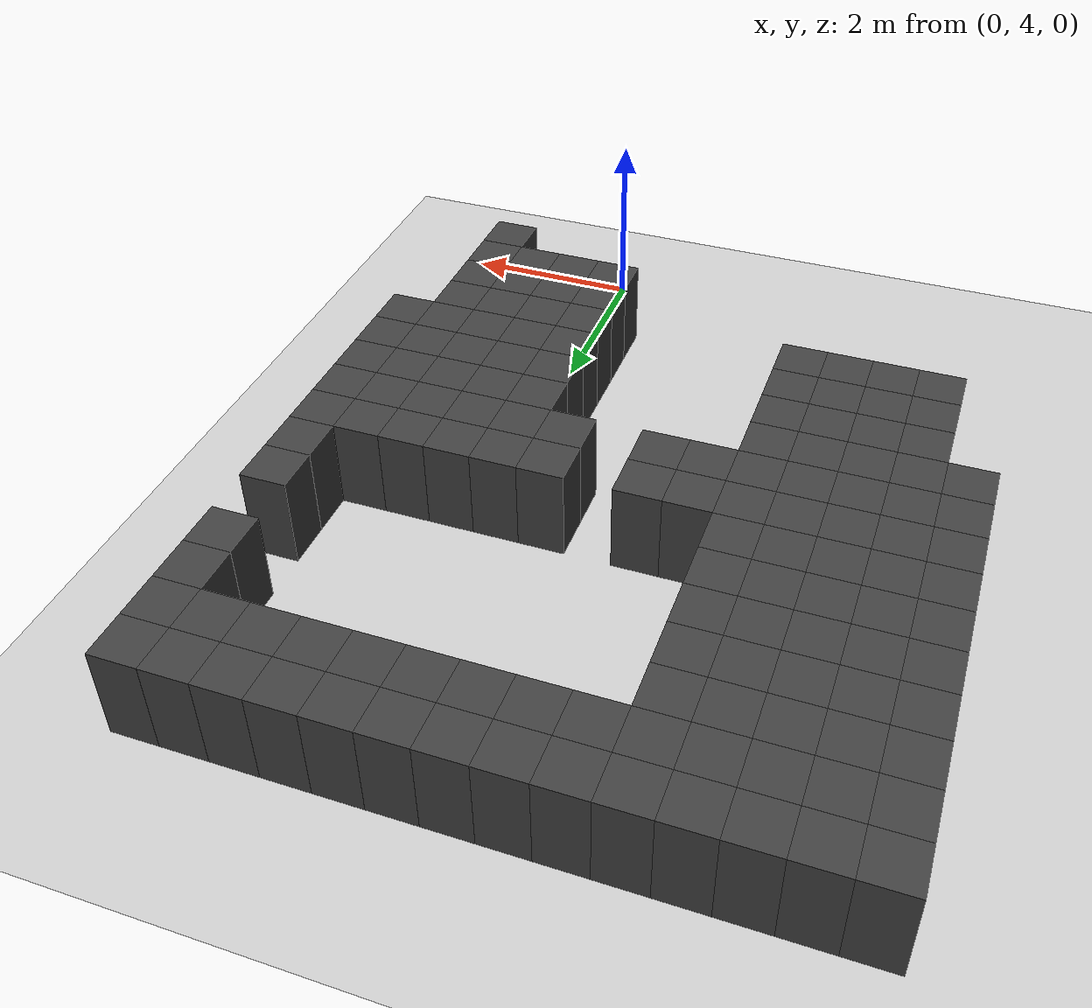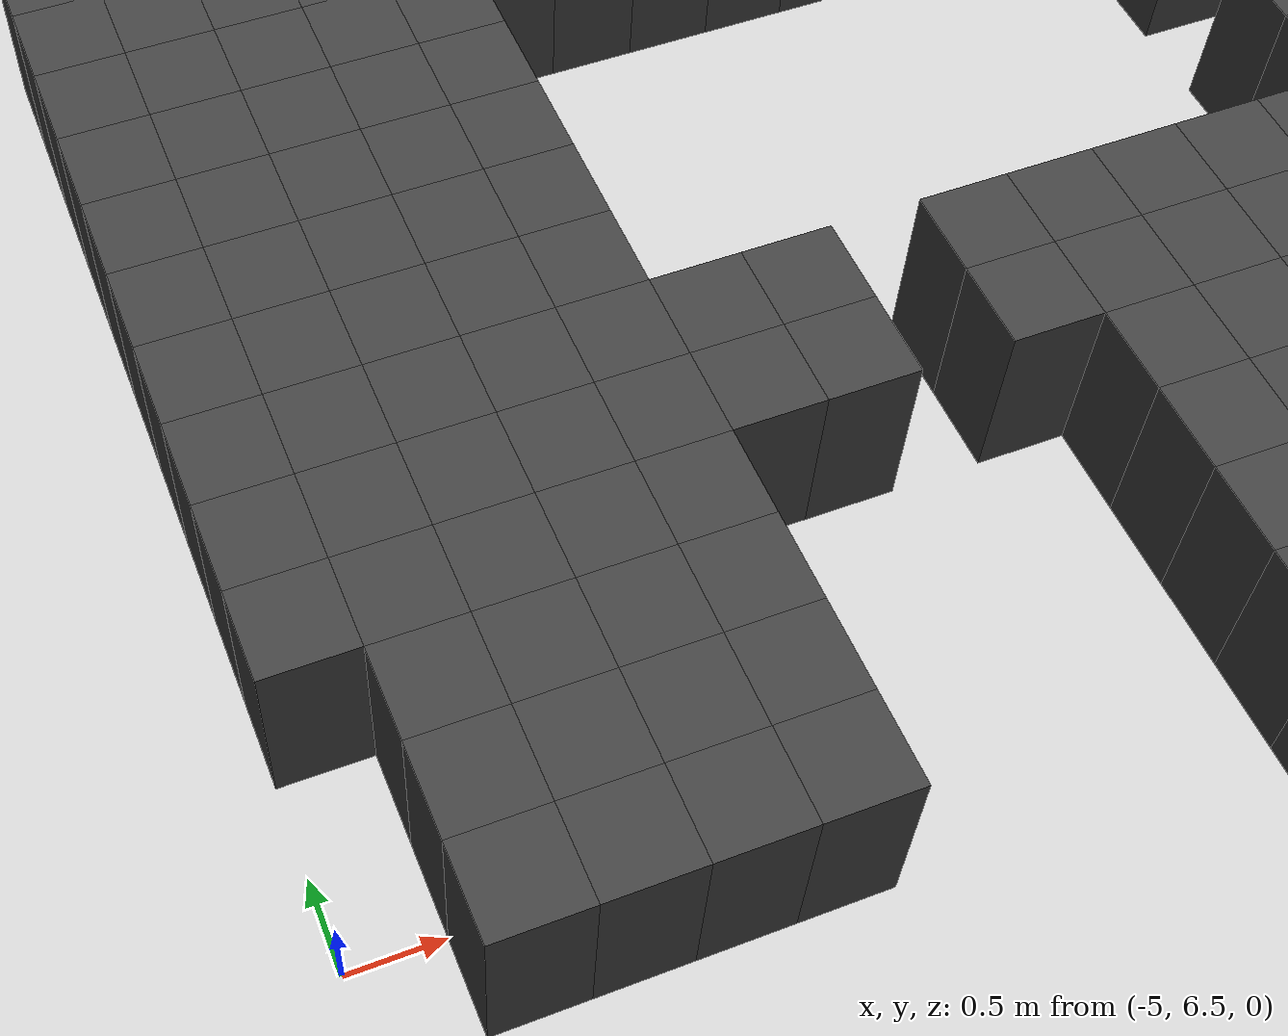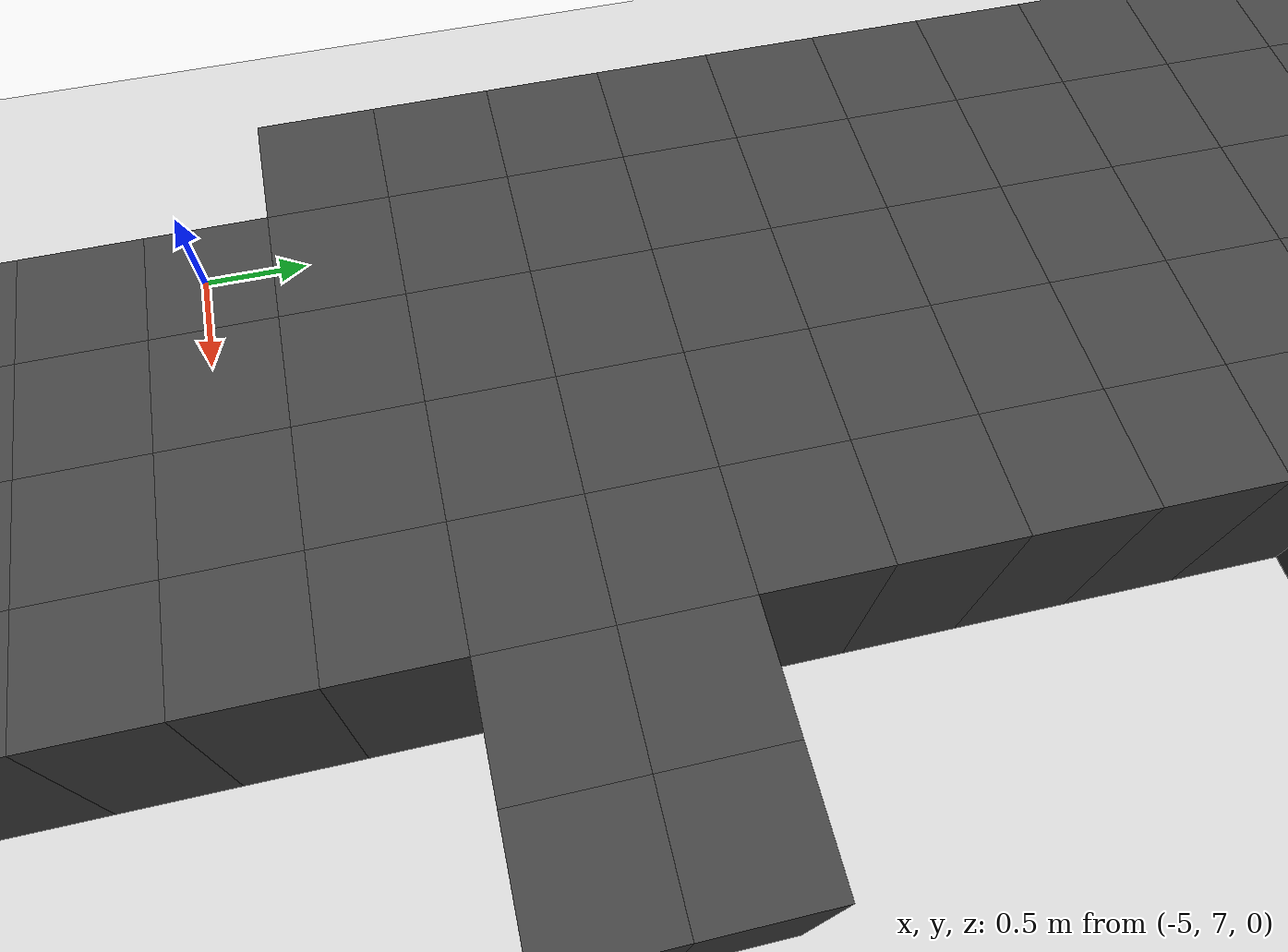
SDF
<sdf version="1.7">
 <world name="map_14494">
  <model name="ground_plane">
   <static>true</static>
   <link name="link">
    <collision name="collision">
     <geometry><plane><normal>0 0 1</normal><size>200 200</size></plane></geometry>
    </collision>
    <visual name="visual">
     <geometry><plane><normal>0 0 1</normal><size>200 200</size></plane></geometry>
     <material><ambient>0.8 0.8 0.8 1</ambient><diffuse>0.8 0.8 0.8 1</diffuse></material>
    </visual>
   </link>
  </model>
  <model name="maze_environment">
   <static>true</static>
   <link name="wall_15">
    <pose>-4.750 12.250 0.500 0 0 0</pose>
    <collision name="col"><geometry><box><size>0.5 0.5 1.0</size></box></geometry></collision>
    <visual name="vis">
     <geometry><box><size>0.5 0.5 1.0</size></box></geometry>
     <material><ambient>0.15 0.15 0.15 1</ambient><diffuse>0.25 0.25 0.25 1</diffuse></material>
    </visual>
   </link>
   <link name="wall_16">
    <pose>-4.250 12.250 0.500 0 0 0</pose>
    <collision name="col"><geometry><box><size>0.5 0.5 1.0</size></box></geometry></collision>
    <visual name="vis">
     <geometry><box><size>0.5 0.5 1.0</size></box></geometry>
     <material><ambient>0.15 0.15 0.15 1</ambient><diffuse>0.25 0.25 0.25 1</diffuse></material>
    </visual>
   </link>
   <link name="wall_17">
    <pose>-3.750 12.250 0.500 0 0 0</pose>
    <collision name="col"><geometry><box><size>0.5 0.5 1.0</size></box></geometry></collision>
    <visual name="vis">
     <geometry><box><size>0.5 0.5 1.0</size></box></geometry>
     <material><ambient>0.15 0.15 0.15 1</ambient><diffuse>0.25 0.25 0.25 1</diffuse></material>
    </visual>
   </link>
   <link name="wall_18">
    <pose>-3.250 12.250 0.500 0 0 0</pose>
    <collision name="col"><geometry><box><size>0.5 0.5 1.0</size></box></geometry></collision>
    <visual name="vis">
     <geometry><box><size>0.5 0.5 1.0</size></box></geometry>
     <material><ambient>0.15 0.15 0.15 1</ambient><diffuse>0.25 0.25 0.25 1</diffuse></material>
    </visual>
   </link>
   <link name="wall_19">
    <pose>-2.750 12.250 0.500 0 0 0</pose>
    <collision name="col"><geometry><box><size>0.5 0.5 1.0</size></box></geometry></collision>
    <visual name="vis">
     <geometry><box><size>0.5 0.5 1.0</size></box></geometry>
     <material><ambient>0.15 0.15 0.15 1</ambient><diffuse>0.25 0.25 0.25 1</diffuse></material>
    </visual>
   </link>
   <link name="wall_20">
    <pose>-2.250 12.250 0.500 0 0 0</pose>
    <collision name="col"><geometry><box><size>0.5 0.5 1.0</size></box></geometry></collision>
    <visual name="vis">
     <geometry><box><size>0.5 0.5 1.0</size></box></geometry>
     <material><ambient>0.15 0.15 0.15 1</ambient><diffuse>0.25 0.25 0.25 1</diffuse></material>
    </visual>
   </link>
   <link name="wall_21">
    <pose>-1.750 12.250 0.500 0 0 0</pose>
    <collision name="col"><geometry><box><size>0.5 0.5 1.0</size></box></geometry></collision>
    <visual name="vis">
     <geometry><box><size>0.5 0.5 1.0</size></box></geometry>
     <material><ambient>0.15 0.15 0.15 1</ambient><diffuse>0.25 0.25 0.25 1</diffuse></material>
    </visual>
   </link>
   <link name="wall_22">
    <pose>-1.250 12.250 0.500 0 0 0</pose>
    <collision name="col"><geometry><box><size>0.5 0.5 1.0</size></box></geometry></collision>
    <visual name="vis">
     <geometry><box><size>0.5 0.5 1.0</size></box></geometry>
     <material><ambient>0.15 0.15 0.15 1</ambient><diffuse>0.25 0.25 0.25 1</diffuse></material>
    </visual>
   </link>
   <link name="wall_23">
    <pose>-0.750 12.250 0.500 0 0 0</pose>
    <collision name="col"><geometry><box><size>0.5 0.5 1.0</size></box></geometry></collision>
    <visual name="vis">
     <geometry><box><size>0.5 0.5 1.0</size></box></geometry>
     <material><ambient>0.15 0.15 0.15 1</ambient><diffuse>0.25 0.25 0.25 1</diffuse></material>
    </visual>
   </link>
   <link name="wall_24">
    <pose>-0.250 12.250 0.500 0 0 0</pose>
    <collision name="col"><geometry><box><size>0.5 0.5 1.0</size></box></geometry></collision>
    <visual name="vis">
     <geometry><box><size>0.5 0.5 1.0</size></box></geometry>
     <material><ambient>0.15 0.15 0.15 1</ambient><diffuse>0.25 0.25 0.25 1</diffuse></material>
    </visual>
   </link>
   <link name="wall_25">
    <pose>0.250 12.250 0.500 0 0 0</pose>
    <collision name="col"><geometry><box><size>0.5 0.5 1.0</size></box></geometry></collision>
    <visual name="vis">
     <geometry><box><size>0.5 0.5 1.0</size></box></geometry>
     <material><ambient>0.15 0.15 0.15 1</ambient><diffuse>0.25 0.25 0.25 1</diffuse></material>
    </visual>
   </link>
   <link name="wall_26">
    <pose>0.750 12.250 0.500 0 0 0</pose>
    <collision name="col"><geometry><box><size>0.5 0.5 1.0</size></box></geometry></collision>
    <visual name="vis">
     <geometry><box><size>0.5 0.5 1.0</size></box></geometry>
     <material><ambient>0.15 0.15 0.15 1</ambient><diffuse>0.25 0.25 0.25 1</diffuse></material>
    </visual>
   </link>
   <link name="wall_27">
    <pose>1.250 12.250 0.500 0 0 0</pose>
    <collision name="col"><geometry><box><size>0.5 0.5 1.0</size></box></geometry></collision>
    <visual name="vis">
     <geometry><box><size>0.5 0.5 1.0</size></box></geometry>
     <material><ambient>0.15 0.15 0.15 1</ambient><diffuse>0.25 0.25 0.25 1</diffuse></material>
    </visual>
   </link>
   <link name="wall_28">
    <pose>1.750 12.250 0.500 0 0 0</pose>
    <collision name="col"><geometry><box><size>0.5 0.5 1.0</size></box></geometry></collision>
    <visual name="vis">
     <geometry><box><size>0.5 0.5 1.0</size></box></geometry>
     <material><ambient>0.15 0.15 0.15 1</ambient><diffuse>0.25 0.25 0.25 1</diffuse></material>
    </visual>
   </link>
   <link name="wall_62">
    <pose>-4.750 11.750 0.500 0 0 0</pose>
    <collision name="col"><geometry><box><size>0.5 0.5 1.0</size></box></geometry></collision>
    <visual name="vis">
     <geometry><box><size>0.5 0.5 1.0</size></box></geometry>
     <material><ambient>0.15 0.15 0.15 1</ambient><diffuse>0.25 0.25 0.25 1</diffuse></material>
    </visual>
   </link>
   <link name="wall_63">
    <pose>-4.250 11.750 0.500 0 0 0</pose>
    <collision name="col"><geometry><box><size>0.5 0.5 1.0</size></box></geometry></collision>
    <visual name="vis">
     <geometry><box><size>0.5 0.5 1.0</size></box></geometry>
     <material><ambient>0.15 0.15 0.15 1</ambient><diffuse>0.25 0.25 0.25 1</diffuse></material>
    </visual>
   </link>
   <link name="wall_64">
    <pose>-3.750 11.750 0.500 0 0 0</pose>
    <collision name="col"><geometry><box><size>0.5 0.5 1.0</size></box></geometry></collision>
    <visual name="vis">
     <geometry><box><size>0.5 0.5 1.0</size></box></geometry>
     <material><ambient>0.15 0.15 0.15 1</ambient><diffuse>0.25 0.25 0.25 1</diffuse></material>
    </visual>
   </link>
   <link name="wall_65">
    <pose>-3.250 11.750 0.500 0 0 0</pose>
    <collision name="col"><geometry><box><size>0.5 0.5 1.0</size></box></geometry></collision>
    <visual name="vis">
     <geometry><box><size>0.5 0.5 1.0</size></box></geometry>
     <material><ambient>0.15 0.15 0.15 1</ambient><diffuse>0.25 0.25 0.25 1</diffuse></material>
    </visual>
   </link>
   <link name="wall_66">
    <pose>-2.750 11.750 0.500 0 0 0</pose>
    <collision name="col"><geometry><box><size>0.5 0.5 1.0</size></box></geometry></collision>
    <visual name="vis">
     <geometry><box><size>0.5 0.5 1.0</size></box></geometry>
     <material><ambient>0.15 0.15 0.15 1</ambient><diffuse>0.25 0.25 0.25 1</diffuse></material>
    </visual>
   </link>
   <link name="wall_67">
    <pose>-2.250 11.750 0.500 0 0 0</pose>
    <collision name="col"><geometry><box><size>0.5 0.5 1.0</size></box></geometry></collision>
    <visual name="vis">
     <geometry><box><size>0.5 0.5 1.0</size></box></geometry>
     <material><ambient>0.15 0.15 0.15 1</ambient><diffuse>0.25 0.25 0.25 1</diffuse></material>
    </visual>
   </link>
   <link name="wall_68">
    <pose>-1.750 11.750 0.500 0 0 0</pose>
    <collision name="col"><geometry><box><size>0.5 0.5 1.0</size></box></geometry></collision>
    <visual name="vis">
     <geometry><box><size>0.5 0.5 1.0</size></box></geometry>
     <material><ambient>0.15 0.15 0.15 1</ambient><diffuse>0.25 0.25 0.25 1</diffuse></material>
    </visual>
   </link>
   <link name="wall_69">
    <pose>-1.250 11.750 0.500 0 0 0</pose>
    <collision name="col"><geometry><box><size>0.5 0.5 1.0</size></box></geometry></collision>
    <visual name="vis">
     <geometry><box><size>0.5 0.5 1.0</size></box></geometry>
     <material><ambient>0.15 0.15 0.15 1</ambient><diffuse>0.25 0.25 0.25 1</diffuse></material>
    </visual>
   </link>
   <link name="wall_70">
    <pose>-0.750 11.750 0.500 0 0 0</pose>
    <collision name="col"><geometry><box><size>0.5 0.5 1.0</size></box></geometry></collision>
    <visual name="vis">
     <geometry><box><size>0.5 0.5 1.0</size></box></geometry>
     <material><ambient>0.15 0.15 0.15 1</ambient><diffuse>0.25 0.25 0.25 1</diffuse></material>
    </visual>
   </link>
   <link name="wall_71">
    <pose>-0.250 11.750 0.500 0 0 0</pose>
    <collision name="col"><geometry><box><size>0.5 0.5 1.0</size></box></geometry></collision>
    <visual name="vis">
     <geometry><box><size>0.5 0.5 1.0</size></box></geometry>
     <material><ambient>0.15 0.15 0.15 1</ambient><diffuse>0.25 0.25 0.25 1</diffuse></material>
    </visual>
   </link>
   <link name="wall_72">
    <pose>0.250 11.750 0.500 0 0 0</pose>
    <collision name="col"><geometry><box><size>0.5 0.5 1.0</size></box></geometry></collision>
    <visual name="vis">
     <geometry><box><size>0.5 0.5 1.0</size></box></geometry>
     <material><ambient>0.15 0.15 0.15 1</ambient><diffuse>0.25 0.25 0.25 1</diffuse></material>
    </visual>
   </link>
   <link name="wall_73">
    <pose>0.750 11.750 0.500 0 0 0</pose>
    <collision name="col"><geometry><box><size>0.5 0.5 1.0</size></box></geometry></collision>
    <visual name="vis">
     <geometry><box><size>0.5 0.5 1.0</size></box></geometry>
     <material><ambient>0.15 0.15 0.15 1</ambient><diffuse>0.25 0.25 0.25 1</diffuse></material>
    </visual>
   </link>
   <link name="wall_74">
    <pose>1.250 11.750 0.500 0 0 0</pose>
    <collision name="col"><geometry><box><size>0.5 0.5 1.0</size></box></geometry></collision>
    <visual name="vis">
     <geometry><box><size>0.5 0.5 1.0</size></box></geometry>
     <material><ambient>0.15 0.15 0.15 1</ambient><diffuse>0.25 0.25 0.25 1</diffuse></material>
    </visual>
   </link>
   <link name="wall_75">
    <pose>1.750 11.750 0.500 0 0 0</pose>
    <collision name="col"><geometry><box><size>0.5 0.5 1.0</size></box></geometry></collision>
    <visual name="vis">
     <geometry><box><size>0.5 0.5 1.0</size></box></geometry>
     <material><ambient>0.15 0.15 0.15 1</ambient><diffuse>0.25 0.25 0.25 1</diffuse></material>
    </visual>
   </link>
   <link name="wall_109">
    <pose>-4.750 11.250 0.500 0 0 0</pose>
    <collision name="col"><geometry><box><size>0.5 0.5 1.0</size></box></geometry></collision>
    <visual name="vis">
     <geometry><box><size>0.5 0.5 1.0</size></box></geometry>
     <material><ambient>0.15 0.15 0.15 1</ambient><diffuse>0.25 0.25 0.25 1</diffuse></material>
    </visual>
   </link>
   <link name="wall_110">
    <pose>-4.250 11.250 0.500 0 0 0</pose>
    <collision name="col"><geometry><box><size>0.5 0.5 1.0</size></box></geometry></collision>
    <visual name="vis">
     <geometry><box><size>0.5 0.5 1.0</size></box></geometry>
     <material><ambient>0.15 0.15 0.15 1</ambient><diffuse>0.25 0.25 0.25 1</diffuse></material>
    </visual>
   </link>
   <link name="wall_111">
    <pose>-3.750 11.250 0.500 0 0 0</pose>
    <collision name="col"><geometry><box><size>0.5 0.5 1.0</size></box></geometry></collision>
    <visual name="vis">
     <geometry><box><size>0.5 0.5 1.0</size></box></geometry>
     <material><ambient>0.15 0.15 0.15 1</ambient><diffuse>0.25 0.25 0.25 1</diffuse></material>
    </visual>
   </link>
   <link name="wall_112">
    <pose>-3.250 11.250 0.500 0 0 0</pose>
    <collision name="col"><geometry><box><size>0.5 0.5 1.0</size></box></geometry></collision>
    <visual name="vis">
     <geometry><box><size>0.5 0.5 1.0</size></box></geometry>
     <material><ambient>0.15 0.15 0.15 1</ambient><diffuse>0.25 0.25 0.25 1</diffuse></material>
    </visual>
   </link>
   <link name="wall_113">
    <pose>-2.750 11.250 0.500 0 0 0</pose>
    <collision name="col"><geometry><box><size>0.5 0.5 1.0</size></box></geometry></collision>
    <visual name="vis">
     <geometry><box><size>0.5 0.5 1.0</size></box></geometry>
     <material><ambient>0.15 0.15 0.15 1</ambient><diffuse>0.25 0.25 0.25 1</diffuse></material>
    </visual>
   </link>
   <link name="wall_114">
    <pose>1.750 11.250 0.500 0 0 0</pose>
    <collision name="col"><geometry><box><size>0.5 0.5 1.0</size></box></geometry></collision>
    <visual name="vis">
     <geometry><box><size>0.5 0.5 1.0</size></box></geometry>
     <material><ambient>0.15 0.15 0.15 1</ambient><diffuse>0.25 0.25 0.25 1</diffuse></material>
    </visual>
   </link>
   <link name="wall_137">
    <pose>-4.750 10.750 0.500 0 0 0</pose>
    <collision name="col"><geometry><box><size>0.5 0.5 1.0</size></box></geometry></collision>
    <visual name="vis">
     <geometry><box><size>0.5 0.5 1.0</size></box></geometry>
     <material><ambient>0.15 0.15 0.15 1</ambient><diffuse>0.25 0.25 0.25 1</diffuse></material>
    </visual>
   </link>
   <link name="wall_138">
    <pose>-4.250 10.750 0.500 0 0 0</pose>
    <collision name="col"><geometry><box><size>0.5 0.5 1.0</size></box></geometry></collision>
    <visual name="vis">
     <geometry><box><size>0.5 0.5 1.0</size></box></geometry>
     <material><ambient>0.15 0.15 0.15 1</ambient><diffuse>0.25 0.25 0.25 1</diffuse></material>
    </visual>
   </link>
   <link name="wall_139">
    <pose>-3.750 10.750 0.500 0 0 0</pose>
    <collision name="col"><geometry><box><size>0.5 0.5 1.0</size></box></geometry></collision>
    <visual name="vis">
     <geometry><box><size>0.5 0.5 1.0</size></box></geometry>
     <material><ambient>0.15 0.15 0.15 1</ambient><diffuse>0.25 0.25 0.25 1</diffuse></material>
    </visual>
   </link>
   <link name="wall_140">
    <pose>-3.250 10.750 0.500 0 0 0</pose>
    <collision name="col"><geometry><box><size>0.5 0.5 1.0</size></box></geometry></collision>
    <visual name="vis">
     <geometry><box><size>0.5 0.5 1.0</size></box></geometry>
     <material><ambient>0.15 0.15 0.15 1</ambient><diffuse>0.25 0.25 0.25 1</diffuse></material>
    </visual>
   </link>
   <link name="wall_141">
    <pose>-2.750 10.750 0.500 0 0 0</pose>
    <collision name="col"><geometry><box><size>0.5 0.5 1.0</size></box></geometry></collision>
    <visual name="vis">
     <geometry><box><size>0.5 0.5 1.0</size></box></geometry>
     <material><ambient>0.15 0.15 0.15 1</ambient><diffuse>0.25 0.25 0.25 1</diffuse></material>
    </visual>
   </link>
   <link name="wall_142">
    <pose>1.750 10.750 0.500 0 0 0</pose>
    <collision name="col"><geometry><box><size>0.5 0.5 1.0</size></box></geometry></collision>
    <visual name="vis">
     <geometry><box><size>0.5 0.5 1.0</size></box></geometry>
     <material><ambient>0.15 0.15 0.15 1</ambient><diffuse>0.25 0.25 0.25 1</diffuse></material>
    </visual>
   </link>
   <link name="wall_167">
    <pose>-4.750 10.250 0.500 0 0 0</pose>
    <collision name="col"><geometry><box><size>0.5 0.5 1.0</size></box></geometry></collision>
    <visual name="vis">
     <geometry><box><size>0.5 0.5 1.0</size></box></geometry>
     <material><ambient>0.15 0.15 0.15 1</ambient><diffuse>0.25 0.25 0.25 1</diffuse></material>
    </visual>
   </link>
   <link name="wall_168">
    <pose>-4.250 10.250 0.500 0 0 0</pose>
    <collision name="col"><geometry><box><size>0.5 0.5 1.0</size></box></geometry></collision>
    <visual name="vis">
     <geometry><box><size>0.5 0.5 1.0</size></box></geometry>
     <material><ambient>0.15 0.15 0.15 1</ambient><diffuse>0.25 0.25 0.25 1</diffuse></material>
    </visual>
   </link>
   <link name="wall_169">
    <pose>-3.750 10.250 0.500 0 0 0</pose>
    <collision name="col"><geometry><box><size>0.5 0.5 1.0</size></box></geometry></collision>
    <visual name="vis">
     <geometry><box><size>0.5 0.5 1.0</size></box></geometry>
     <material><ambient>0.15 0.15 0.15 1</ambient><diffuse>0.25 0.25 0.25 1</diffuse></material>
    </visual>
   </link>
   <link name="wall_170">
    <pose>-3.250 10.250 0.500 0 0 0</pose>
    <collision name="col"><geometry><box><size>0.5 0.5 1.0</size></box></geometry></collision>
    <visual name="vis">
     <geometry><box><size>0.5 0.5 1.0</size></box></geometry>
     <material><ambient>0.15 0.15 0.15 1</ambient><diffuse>0.25 0.25 0.25 1</diffuse></material>
    </visual>
   </link>
   <link name="wall_171">
    <pose>-2.750 10.250 0.500 0 0 0</pose>
    <collision name="col"><geometry><box><size>0.5 0.5 1.0</size></box></geometry></collision>
    <visual name="vis">
     <geometry><box><size>0.5 0.5 1.0</size></box></geometry>
     <material><ambient>0.15 0.15 0.15 1</ambient><diffuse>0.25 0.25 0.25 1</diffuse></material>
    </visual>
   </link>
   <link name="wall_185">
    <pose>-4.750 9.750 0.500 0 0 0</pose>
    <collision name="col"><geometry><box><size>0.5 0.5 1.0</size></box></geometry></collision>
    <visual name="vis">
     <geometry><box><size>0.5 0.5 1.0</size></box></geometry>
     <material><ambient>0.15 0.15 0.15 1</ambient><diffuse>0.25 0.25 0.25 1</diffuse></material>
    </visual>
   </link>
   <link name="wall_186">
    <pose>-4.250 9.750 0.500 0 0 0</pose>
    <collision name="col"><geometry><box><size>0.5 0.5 1.0</size></box></geometry></collision>
    <visual name="vis">
     <geometry><box><size>0.5 0.5 1.0</size></box></geometry>
     <material><ambient>0.15 0.15 0.15 1</ambient><diffuse>0.25 0.25 0.25 1</diffuse></material>
    </visual>
   </link>
   <link name="wall_187">
    <pose>-3.750 9.750 0.500 0 0 0</pose>
    <collision name="col"><geometry><box><size>0.5 0.5 1.0</size></box></geometry></collision>
    <visual name="vis">
     <geometry><box><size>0.5 0.5 1.0</size></box></geometry>
     <material><ambient>0.15 0.15 0.15 1</ambient><diffuse>0.25 0.25 0.25 1</diffuse></material>
    </visual>
   </link>
   <link name="wall_188">
    <pose>-3.250 9.750 0.500 0 0 0</pose>
    <collision name="col"><geometry><box><size>0.5 0.5 1.0</size></box></geometry></collision>
    <visual name="vis">
     <geometry><box><size>0.5 0.5 1.0</size></box></geometry>
     <material><ambient>0.15 0.15 0.15 1</ambient><diffuse>0.25 0.25 0.25 1</diffuse></material>
    </visual>
   </link>
   <link name="wall_189">
    <pose>-2.750 9.750 0.500 0 0 0</pose>
    <collision name="col"><geometry><box><size>0.5 0.5 1.0</size></box></geometry></collision>
    <visual name="vis">
     <geometry><box><size>0.5 0.5 1.0</size></box></geometry>
     <material><ambient>0.15 0.15 0.15 1</ambient><diffuse>0.25 0.25 0.25 1</diffuse></material>
    </visual>
   </link>
   <link name="wall_190">
    <pose>1.750 9.750 0.500 0 0 0</pose>
    <collision name="col"><geometry><box><size>0.5 0.5 1.0</size></box></geometry></collision>
    <visual name="vis">
     <geometry><box><size>0.5 0.5 1.0</size></box></geometry>
     <material><ambient>0.15 0.15 0.15 1</ambient><diffuse>0.25 0.25 0.25 1</diffuse></material>
    </visual>
   </link>
   <link name="wall_210">
    <pose>-4.750 9.250 0.500 0 0 0</pose>
    <collision name="col"><geometry><box><size>0.5 0.5 1.0</size></box></geometry></collision>
    <visual name="vis">
     <geometry><box><size>0.5 0.5 1.0</size></box></geometry>
     <material><ambient>0.15 0.15 0.15 1</ambient><diffuse>0.25 0.25 0.25 1</diffuse></material>
    </visual>
   </link>
   <link name="wall_211">
    <pose>-4.250 9.250 0.500 0 0 0</pose>
    <collision name="col"><geometry><box><size>0.5 0.5 1.0</size></box></geometry></collision>
    <visual name="vis">
     <geometry><box><size>0.5 0.5 1.0</size></box></geometry>
     <material><ambient>0.15 0.15 0.15 1</ambient><diffuse>0.25 0.25 0.25 1</diffuse></material>
    </visual>
   </link>
   <link name="wall_212">
    <pose>-3.750 9.250 0.500 0 0 0</pose>
    <collision name="col"><geometry><box><size>0.5 0.5 1.0</size></box></geometry></collision>
    <visual name="vis">
     <geometry><box><size>0.5 0.5 1.0</size></box></geometry>
     <material><ambient>0.15 0.15 0.15 1</ambient><diffuse>0.25 0.25 0.25 1</diffuse></material>
    </visual>
   </link>
   <link name="wall_213">
    <pose>-3.250 9.250 0.500 0 0 0</pose>
    <collision name="col"><geometry><box><size>0.5 0.5 1.0</size></box></geometry></collision>
    <visual name="vis">
     <geometry><box><size>0.5 0.5 1.0</size></box></geometry>
     <material><ambient>0.15 0.15 0.15 1</ambient><diffuse>0.25 0.25 0.25 1</diffuse></material>
    </visual>
   </link>
   <link name="wall_214">
    <pose>-2.750 9.250 0.500 0 0 0</pose>
    <collision name="col"><geometry><box><size>0.5 0.5 1.0</size></box></geometry></collision>
    <visual name="vis">
     <geometry><box><size>0.5 0.5 1.0</size></box></geometry>
     <material><ambient>0.15 0.15 0.15 1</ambient><diffuse>0.25 0.25 0.25 1</diffuse></material>
    </visual>
   </link>
   <link name="wall_215">
    <pose>1.750 9.250 0.500 0 0 0</pose>
    <collision name="col"><geometry><box><size>0.5 0.5 1.0</size></box></geometry></collision>
    <visual name="vis">
     <geometry><box><size>0.5 0.5 1.0</size></box></geometry>
     <material><ambient>0.15 0.15 0.15 1</ambient><diffuse>0.25 0.25 0.25 1</diffuse></material>
    </visual>
   </link>
   <link name="wall_241">
    <pose>-4.750 8.750 0.500 0 0 0</pose>
    <collision name="col"><geometry><box><size>0.5 0.5 1.0</size></box></geometry></collision>
    <visual name="vis">
     <geometry><box><size>0.5 0.5 1.0</size></box></geometry>
     <material><ambient>0.15 0.15 0.15 1</ambient><diffuse>0.25 0.25 0.25 1</diffuse></material>
    </visual>
   </link>
   <link name="wall_242">
    <pose>-4.250 8.750 0.500 0 0 0</pose>
    <collision name="col"><geometry><box><size>0.5 0.5 1.0</size></box></geometry></collision>
    <visual name="vis">
     <geometry><box><size>0.5 0.5 1.0</size></box></geometry>
     <material><ambient>0.15 0.15 0.15 1</ambient><diffuse>0.25 0.25 0.25 1</diffuse></material>
    </visual>
   </link>
   <link name="wall_243">
    <pose>-3.750 8.750 0.500 0 0 0</pose>
    <collision name="col"><geometry><box><size>0.5 0.5 1.0</size></box></geometry></collision>
    <visual name="vis">
     <geometry><box><size>0.5 0.5 1.0</size></box></geometry>
     <material><ambient>0.15 0.15 0.15 1</ambient><diffuse>0.25 0.25 0.25 1</diffuse></material>
    </visual>
   </link>
   <link name="wall_244">
    <pose>-3.250 8.750 0.500 0 0 0</pose>
    <collision name="col"><geometry><box><size>0.5 0.5 1.0</size></box></geometry></collision>
    <visual name="vis">
     <geometry><box><size>0.5 0.5 1.0</size></box></geometry>
     <material><ambient>0.15 0.15 0.15 1</ambient><diffuse>0.25 0.25 0.25 1</diffuse></material>
    </visual>
   </link>
   <link name="wall_245">
    <pose>-2.750 8.750 0.500 0 0 0</pose>
    <collision name="col"><geometry><box><size>0.5 0.5 1.0</size></box></geometry></collision>
    <visual name="vis">
     <geometry><box><size>0.5 0.5 1.0</size></box></geometry>
     <material><ambient>0.15 0.15 0.15 1</ambient><diffuse>0.25 0.25 0.25 1</diffuse></material>
    </visual>
   </link>
   <link name="wall_246">
    <pose>-2.250 8.750 0.500 0 0 0</pose>
    <collision name="col"><geometry><box><size>0.5 0.5 1.0</size></box></geometry></collision>
    <visual name="vis">
     <geometry><box><size>0.5 0.5 1.0</size></box></geometry>
     <material><ambient>0.15 0.15 0.15 1</ambient><diffuse>0.25 0.25 0.25 1</diffuse></material>
    </visual>
   </link>
   <link name="wall_247">
    <pose>-1.750 8.750 0.500 0 0 0</pose>
    <collision name="col"><geometry><box><size>0.5 0.5 1.0</size></box></geometry></collision>
    <visual name="vis">
     <geometry><box><size>0.5 0.5 1.0</size></box></geometry>
     <material><ambient>0.15 0.15 0.15 1</ambient><diffuse>0.25 0.25 0.25 1</diffuse></material>
    </visual>
   </link>
   <link name="wall_248">
    <pose>-0.750 8.750 0.500 0 0 0</pose>
    <collision name="col"><geometry><box><size>0.5 0.5 1.0</size></box></geometry></collision>
    <visual name="vis">
     <geometry><box><size>0.5 0.5 1.0</size></box></geometry>
     <material><ambient>0.15 0.15 0.15 1</ambient><diffuse>0.25 0.25 0.25 1</diffuse></material>
    </visual>
   </link>
   <link name="wall_249">
    <pose>-0.250 8.750 0.500 0 0 0</pose>
    <collision name="col"><geometry><box><size>0.5 0.5 1.0</size></box></geometry></collision>
    <visual name="vis">
     <geometry><box><size>0.5 0.5 1.0</size></box></geometry>
     <material><ambient>0.15 0.15 0.15 1</ambient><diffuse>0.25 0.25 0.25 1</diffuse></material>
    </visual>
   </link>
   <link name="wall_250">
    <pose>0.250 8.750 0.500 0 0 0</pose>
    <collision name="col"><geometry><box><size>0.5 0.5 1.0</size></box></geometry></collision>
    <visual name="vis">
     <geometry><box><size>0.5 0.5 1.0</size></box></geometry>
     <material><ambient>0.15 0.15 0.15 1</ambient><diffuse>0.25 0.25 0.25 1</diffuse></material>
    </visual>
   </link>
   <link name="wall_251">
    <pose>0.750 8.750 0.500 0 0 0</pose>
    <collision name="col"><geometry><box><size>0.5 0.5 1.0</size></box></geometry></collision>
    <visual name="vis">
     <geometry><box><size>0.5 0.5 1.0</size></box></geometry>
     <material><ambient>0.15 0.15 0.15 1</ambient><diffuse>0.25 0.25 0.25 1</diffuse></material>
    </visual>
   </link>
   <link name="wall_252">
    <pose>1.250 8.750 0.500 0 0 0</pose>
    <collision name="col"><geometry><box><size>0.5 0.5 1.0</size></box></geometry></collision>
    <visual name="vis">
     <geometry><box><size>0.5 0.5 1.0</size></box></geometry>
     <material><ambient>0.15 0.15 0.15 1</ambient><diffuse>0.25 0.25 0.25 1</diffuse></material>
    </visual>
   </link>
   <link name="wall_253">
    <pose>1.750 8.750 0.500 0 0 0</pose>
    <collision name="col"><geometry><box><size>0.5 0.5 1.0</size></box></geometry></collision>
    <visual name="vis">
     <geometry><box><size>0.5 0.5 1.0</size></box></geometry>
     <material><ambient>0.15 0.15 0.15 1</ambient><diffuse>0.25 0.25 0.25 1</diffuse></material>
    </visual>
   </link>
   <link name="wall_283">
    <pose>-4.750 8.250 0.500 0 0 0</pose>
    <collision name="col"><geometry><box><size>0.5 0.5 1.0</size></box></geometry></collision>
    <visual name="vis">
     <geometry><box><size>0.5 0.5 1.0</size></box></geometry>
     <material><ambient>0.15 0.15 0.15 1</ambient><diffuse>0.25 0.25 0.25 1</diffuse></material>
    </visual>
   </link>
   <link name="wall_284">
    <pose>-4.250 8.250 0.500 0 0 0</pose>
    <collision name="col"><geometry><box><size>0.5 0.5 1.0</size></box></geometry></collision>
    <visual name="vis">
     <geometry><box><size>0.5 0.5 1.0</size></box></geometry>
     <material><ambient>0.15 0.15 0.15 1</ambient><diffuse>0.25 0.25 0.25 1</diffuse></material>
    </visual>
   </link>
   <link name="wall_285">
    <pose>-3.750 8.250 0.500 0 0 0</pose>
    <collision name="col"><geometry><box><size>0.5 0.5 1.0</size></box></geometry></collision>
    <visual name="vis">
     <geometry><box><size>0.5 0.5 1.0</size></box></geometry>
     <material><ambient>0.15 0.15 0.15 1</ambient><diffuse>0.25 0.25 0.25 1</diffuse></material>
    </visual>
   </link>
   <link name="wall_286">
    <pose>-3.250 8.250 0.500 0 0 0</pose>
    <collision name="col"><geometry><box><size>0.5 0.5 1.0</size></box></geometry></collision>
    <visual name="vis">
     <geometry><box><size>0.5 0.5 1.0</size></box></geometry>
     <material><ambient>0.15 0.15 0.15 1</ambient><diffuse>0.25 0.25 0.25 1</diffuse></material>
    </visual>
   </link>
   <link name="wall_287">
    <pose>-2.750 8.250 0.500 0 0 0</pose>
    <collision name="col"><geometry><box><size>0.5 0.5 1.0</size></box></geometry></collision>
    <visual name="vis">
     <geometry><box><size>0.5 0.5 1.0</size></box></geometry>
     <material><ambient>0.15 0.15 0.15 1</ambient><diffuse>0.25 0.25 0.25 1</diffuse></material>
    </visual>
   </link>
   <link name="wall_288">
    <pose>-2.250 8.250 0.500 0 0 0</pose>
    <collision name="col"><geometry><box><size>0.5 0.5 1.0</size></box></geometry></collision>
    <visual name="vis">
     <geometry><box><size>0.5 0.5 1.0</size></box></geometry>
     <material><ambient>0.15 0.15 0.15 1</ambient><diffuse>0.25 0.25 0.25 1</diffuse></material>
    </visual>
   </link>
   <link name="wall_289">
    <pose>-1.750 8.250 0.500 0 0 0</pose>
    <collision name="col"><geometry><box><size>0.5 0.5 1.0</size></box></geometry></collision>
    <visual name="vis">
     <geometry><box><size>0.5 0.5 1.0</size></box></geometry>
     <material><ambient>0.15 0.15 0.15 1</ambient><diffuse>0.25 0.25 0.25 1</diffuse></material>
    </visual>
   </link>
   <link name="wall_290">
    <pose>-0.750 8.250 0.500 0 0 0</pose>
    <collision name="col"><geometry><box><size>0.5 0.5 1.0</size></box></geometry></collision>
    <visual name="vis">
     <geometry><box><size>0.5 0.5 1.0</size></box></geometry>
     <material><ambient>0.15 0.15 0.15 1</ambient><diffuse>0.25 0.25 0.25 1</diffuse></material>
    </visual>
   </link>
   <link name="wall_291">
    <pose>-0.250 8.250 0.500 0 0 0</pose>
    <collision name="col"><geometry><box><size>0.5 0.5 1.0</size></box></geometry></collision>
    <visual name="vis">
     <geometry><box><size>0.5 0.5 1.0</size></box></geometry>
     <material><ambient>0.15 0.15 0.15 1</ambient><diffuse>0.25 0.25 0.25 1</diffuse></material>
    </visual>
   </link>
   <link name="wall_292">
    <pose>0.250 8.250 0.500 0 0 0</pose>
    <collision name="col"><geometry><box><size>0.5 0.5 1.0</size></box></geometry></collision>
    <visual name="vis">
     <geometry><box><size>0.5 0.5 1.0</size></box></geometry>
     <material><ambient>0.15 0.15 0.15 1</ambient><diffuse>0.25 0.25 0.25 1</diffuse></material>
    </visual>
   </link>
   <link name="wall_293">
    <pose>0.750 8.250 0.500 0 0 0</pose>
    <collision name="col"><geometry><box><size>0.5 0.5 1.0</size></box></geometry></collision>
    <visual name="vis">
     <geometry><box><size>0.5 0.5 1.0</size></box></geometry>
     <material><ambient>0.15 0.15 0.15 1</ambient><diffuse>0.25 0.25 0.25 1</diffuse></material>
    </visual>
   </link>
   <link name="wall_294">
    <pose>1.250 8.250 0.500 0 0 0</pose>
    <collision name="col"><geometry><box><size>0.5 0.5 1.0</size></box></geometry></collision>
    <visual name="vis">
     <geometry><box><size>0.5 0.5 1.0</size></box></geometry>
     <material><ambient>0.15 0.15 0.15 1</ambient><diffuse>0.25 0.25 0.25 1</diffuse></material>
    </visual>
   </link>
   <link name="wall_295">
    <pose>1.750 8.250 0.500 0 0 0</pose>
    <collision name="col"><geometry><box><size>0.5 0.5 1.0</size></box></geometry></collision>
    <visual name="vis">
     <geometry><box><size>0.5 0.5 1.0</size></box></geometry>
     <material><ambient>0.15 0.15 0.15 1</ambient><diffuse>0.25 0.25 0.25 1</diffuse></material>
    </visual>
   </link>
   <link name="wall_327">
    <pose>-4.750 7.750 0.500 0 0 0</pose>
    <collision name="col"><geometry><box><size>0.5 0.5 1.0</size></box></geometry></collision>
    <visual name="vis">
     <geometry><box><size>0.5 0.5 1.0</size></box></geometry>
     <material><ambient>0.15 0.15 0.15 1</ambient><diffuse>0.25 0.25 0.25 1</diffuse></material>
    </visual>
   </link>
   <link name="wall_328">
    <pose>-4.250 7.750 0.500 0 0 0</pose>
    <collision name="col"><geometry><box><size>0.5 0.5 1.0</size></box></geometry></collision>
    <visual name="vis">
     <geometry><box><size>0.5 0.5 1.0</size></box></geometry>
     <material><ambient>0.15 0.15 0.15 1</ambient><diffuse>0.25 0.25 0.25 1</diffuse></material>
    </visual>
   </link>
   <link name="wall_329">
    <pose>-3.750 7.750 0.500 0 0 0</pose>
    <collision name="col"><geometry><box><size>0.5 0.5 1.0</size></box></geometry></collision>
    <visual name="vis">
     <geometry><box><size>0.5 0.5 1.0</size></box></geometry>
     <material><ambient>0.15 0.15 0.15 1</ambient><diffuse>0.25 0.25 0.25 1</diffuse></material>
    </visual>
   </link>
   <link name="wall_330">
    <pose>-3.250 7.750 0.500 0 0 0</pose>
    <collision name="col"><geometry><box><size>0.5 0.5 1.0</size></box></geometry></collision>
    <visual name="vis">
     <geometry><box><size>0.5 0.5 1.0</size></box></geometry>
     <material><ambient>0.15 0.15 0.15 1</ambient><diffuse>0.25 0.25 0.25 1</diffuse></material>
    </visual>
   </link>
   <link name="wall_331">
    <pose>-2.750 7.750 0.500 0 0 0</pose>
    <collision name="col"><geometry><box><size>0.5 0.5 1.0</size></box></geometry></collision>
    <visual name="vis">
     <geometry><box><size>0.5 0.5 1.0</size></box></geometry>
     <material><ambient>0.15 0.15 0.15 1</ambient><diffuse>0.25 0.25 0.25 1</diffuse></material>
    </visual>
   </link>
   <link name="wall_332">
    <pose>-0.250 7.750 0.500 0 0 0</pose>
    <collision name="col"><geometry><box><size>0.5 0.5 1.0</size></box></geometry></collision>
    <visual name="vis">
     <geometry><box><size>0.5 0.5 1.0</size></box></geometry>
     <material><ambient>0.15 0.15 0.15 1</ambient><diffuse>0.25 0.25 0.25 1</diffuse></material>
    </visual>
   </link>
   <link name="wall_333">
    <pose>0.250 7.750 0.500 0 0 0</pose>
    <collision name="col"><geometry><box><size>0.5 0.5 1.0</size></box></geometry></collision>
    <visual name="vis">
     <geometry><box><size>0.5 0.5 1.0</size></box></geometry>
     <material><ambient>0.15 0.15 0.15 1</ambient><diffuse>0.25 0.25 0.25 1</diffuse></material>
    </visual>
   </link>
   <link name="wall_334">
    <pose>0.750 7.750 0.500 0 0 0</pose>
    <collision name="col"><geometry><box><size>0.5 0.5 1.0</size></box></geometry></collision>
    <visual name="vis">
     <geometry><box><size>0.5 0.5 1.0</size></box></geometry>
     <material><ambient>0.15 0.15 0.15 1</ambient><diffuse>0.25 0.25 0.25 1</diffuse></material>
    </visual>
   </link>
   <link name="wall_335">
    <pose>1.250 7.750 0.500 0 0 0</pose>
    <collision name="col"><geometry><box><size>0.5 0.5 1.0</size></box></geometry></collision>
    <visual name="vis">
     <geometry><box><size>0.5 0.5 1.0</size></box></geometry>
     <material><ambient>0.15 0.15 0.15 1</ambient><diffuse>0.25 0.25 0.25 1</diffuse></material>
    </visual>
   </link>
   <link name="wall_336">
    <pose>1.750 7.750 0.500 0 0 0</pose>
    <collision name="col"><geometry><box><size>0.5 0.5 1.0</size></box></geometry></collision>
    <visual name="vis">
     <geometry><box><size>0.5 0.5 1.0</size></box></geometry>
     <material><ambient>0.15 0.15 0.15 1</ambient><diffuse>0.25 0.25 0.25 1</diffuse></material>
    </visual>
   </link>
   <link name="wall_369">
    <pose>-4.250 7.250 0.500 0 0 0</pose>
    <collision name="col"><geometry><box><size>0.5 0.5 1.0</size></box></geometry></collision>
    <visual name="vis">
     <geometry><box><size>0.5 0.5 1.0</size></box></geometry>
     <material><ambient>0.15 0.15 0.15 1</ambient><diffuse>0.25 0.25 0.25 1</diffuse></material>
    </visual>
   </link>
   <link name="wall_370">
    <pose>-3.750 7.250 0.500 0 0 0</pose>
    <collision name="col"><geometry><box><size>0.5 0.5 1.0</size></box></geometry></collision>
    <visual name="vis">
     <geometry><box><size>0.5 0.5 1.0</size></box></geometry>
     <material><ambient>0.15 0.15 0.15 1</ambient><diffuse>0.25 0.25 0.25 1</diffuse></material>
    </visual>
   </link>
   <link name="wall_371">
    <pose>-3.250 7.250 0.500 0 0 0</pose>
    <collision name="col"><geometry><box><size>0.5 0.5 1.0</size></box></geometry></collision>
    <visual name="vis">
     <geometry><box><size>0.5 0.5 1.0</size></box></geometry>
     <material><ambient>0.15 0.15 0.15 1</ambient><diffuse>0.25 0.25 0.25 1</diffuse></material>
    </visual>
   </link>
   <link name="wall_372">
    <pose>-2.750 7.250 0.500 0 0 0</pose>
    <collision name="col"><geometry><box><size>0.5 0.5 1.0</size></box></geometry></collision>
    <visual name="vis">
     <geometry><box><size>0.5 0.5 1.0</size></box></geometry>
     <material><ambient>0.15 0.15 0.15 1</ambient><diffuse>0.25 0.25 0.25 1</diffuse></material>
    </visual>
   </link>
   <link name="wall_373">
    <pose>-0.250 7.250 0.500 0 0 0</pose>
    <collision name="col"><geometry><box><size>0.5 0.5 1.0</size></box></geometry></collision>
    <visual name="vis">
     <geometry><box><size>0.5 0.5 1.0</size></box></geometry>
     <material><ambient>0.15 0.15 0.15 1</ambient><diffuse>0.25 0.25 0.25 1</diffuse></material>
    </visual>
   </link>
   <link name="wall_374">
    <pose>0.250 7.250 0.500 0 0 0</pose>
    <collision name="col"><geometry><box><size>0.5 0.5 1.0</size></box></geometry></collision>
    <visual name="vis">
     <geometry><box><size>0.5 0.5 1.0</size></box></geometry>
     <material><ambient>0.15 0.15 0.15 1</ambient><diffuse>0.25 0.25 0.25 1</diffuse></material>
    </visual>
   </link>
   <link name="wall_375">
    <pose>0.750 7.250 0.500 0 0 0</pose>
    <collision name="col"><geometry><box><size>0.5 0.5 1.0</size></box></geometry></collision>
    <visual name="vis">
     <geometry><box><size>0.5 0.5 1.0</size></box></geometry>
     <material><ambient>0.15 0.15 0.15 1</ambient><diffuse>0.25 0.25 0.25 1</diffuse></material>
    </visual>
   </link>
   <link name="wall_376">
    <pose>1.250 7.250 0.500 0 0 0</pose>
    <collision name="col"><geometry><box><size>0.5 0.5 1.0</size></box></geometry></collision>
    <visual name="vis">
     <geometry><box><size>0.5 0.5 1.0</size></box></geometry>
     <material><ambient>0.15 0.15 0.15 1</ambient><diffuse>0.25 0.25 0.25 1</diffuse></material>
    </visual>
   </link>
   <link name="wall_377">
    <pose>1.750 7.250 0.500 0 0 0</pose>
    <collision name="col"><geometry><box><size>0.5 0.5 1.0</size></box></geometry></collision>
    <visual name="vis">
     <geometry><box><size>0.5 0.5 1.0</size></box></geometry>
     <material><ambient>0.15 0.15 0.15 1</ambient><diffuse>0.25 0.25 0.25 1</diffuse></material>
    </visual>
   </link>
   <link name="wall_407">
    <pose>-4.250 6.750 0.500 0 0 0</pose>
    <collision name="col"><geometry><box><size>0.5 0.5 1.0</size></box></geometry></collision>
    <visual name="vis">
     <geometry><box><size>0.5 0.5 1.0</size></box></geometry>
     <material><ambient>0.15 0.15 0.15 1</ambient><diffuse>0.25 0.25 0.25 1</diffuse></material>
    </visual>
   </link>
   <link name="wall_408">
    <pose>-3.750 6.750 0.500 0 0 0</pose>
    <collision name="col"><geometry><box><size>0.5 0.5 1.0</size></box></geometry></collision>
    <visual name="vis">
     <geometry><box><size>0.5 0.5 1.0</size></box></geometry>
     <material><ambient>0.15 0.15 0.15 1</ambient><diffuse>0.25 0.25 0.25 1</diffuse></material>
    </visual>
   </link>
   <link name="wall_409">
    <pose>-3.250 6.750 0.500 0 0 0</pose>
    <collision name="col"><geometry><box><size>0.5 0.5 1.0</size></box></geometry></collision>
    <visual name="vis">
     <geometry><box><size>0.5 0.5 1.0</size></box></geometry>
     <material><ambient>0.15 0.15 0.15 1</ambient><diffuse>0.25 0.25 0.25 1</diffuse></material>
    </visual>
   </link>
   <link name="wall_410">
    <pose>-2.750 6.750 0.500 0 0 0</pose>
    <collision name="col"><geometry><box><size>0.5 0.5 1.0</size></box></geometry></collision>
    <visual name="vis">
     <geometry><box><size>0.5 0.5 1.0</size></box></geometry>
     <material><ambient>0.15 0.15 0.15 1</ambient><diffuse>0.25 0.25 0.25 1</diffuse></material>
    </visual>
   </link>
   <link name="wall_411">
    <pose>-0.250 6.750 0.500 0 0 0</pose>
    <collision name="col"><geometry><box><size>0.5 0.5 1.0</size></box></geometry></collision>
    <visual name="vis">
     <geometry><box><size>0.5 0.5 1.0</size></box></geometry>
     <material><ambient>0.15 0.15 0.15 1</ambient><diffuse>0.25 0.25 0.25 1</diffuse></material>
    </visual>
   </link>
   <link name="wall_412">
    <pose>0.250 6.750 0.500 0 0 0</pose>
    <collision name="col"><geometry><box><size>0.5 0.5 1.0</size></box></geometry></collision>
    <visual name="vis">
     <geometry><box><size>0.5 0.5 1.0</size></box></geometry>
     <material><ambient>0.15 0.15 0.15 1</ambient><diffuse>0.25 0.25 0.25 1</diffuse></material>
    </visual>
   </link>
   <link name="wall_413">
    <pose>0.750 6.750 0.500 0 0 0</pose>
    <collision name="col"><geometry><box><size>0.5 0.5 1.0</size></box></geometry></collision>
    <visual name="vis">
     <geometry><box><size>0.5 0.5 1.0</size></box></geometry>
     <material><ambient>0.15 0.15 0.15 1</ambient><diffuse>0.25 0.25 0.25 1</diffuse></material>
    </visual>
   </link>
   <link name="wall_414">
    <pose>1.250 6.750 0.500 0 0 0</pose>
    <collision name="col"><geometry><box><size>0.5 0.5 1.0</size></box></geometry></collision>
    <visual name="vis">
     <geometry><box><size>0.5 0.5 1.0</size></box></geometry>
     <material><ambient>0.15 0.15 0.15 1</ambient><diffuse>0.25 0.25 0.25 1</diffuse></material>
    </visual>
   </link>
   <link name="wall_415">
    <pose>1.750 6.750 0.500 0 0 0</pose>
    <collision name="col"><geometry><box><size>0.5 0.5 1.0</size></box></geometry></collision>
    <visual name="vis">
     <geometry><box><size>0.5 0.5 1.0</size></box></geometry>
     <material><ambient>0.15 0.15 0.15 1</ambient><diffuse>0.25 0.25 0.25 1</diffuse></material>
    </visual>
   </link>
   <link name="wall_445">
    <pose>-4.250 6.250 0.500 0 0 0</pose>
    <collision name="col"><geometry><box><size>0.5 0.5 1.0</size></box></geometry></collision>
    <visual name="vis">
     <geometry><box><size>0.5 0.5 1.0</size></box></geometry>
     <material><ambient>0.15 0.15 0.15 1</ambient><diffuse>0.25 0.25 0.25 1</diffuse></material>
    </visual>
   </link>
   <link name="wall_446">
    <pose>-3.750 6.250 0.500 0 0 0</pose>
    <collision name="col"><geometry><box><size>0.5 0.5 1.0</size></box></geometry></collision>
    <visual name="vis">
     <geometry><box><size>0.5 0.5 1.0</size></box></geometry>
     <material><ambient>0.15 0.15 0.15 1</ambient><diffuse>0.25 0.25 0.25 1</diffuse></material>
    </visual>
   </link>
   <link name="wall_447">
    <pose>-3.250 6.250 0.500 0 0 0</pose>
    <collision name="col"><geometry><box><size>0.5 0.5 1.0</size></box></geometry></collision>
    <visual name="vis">
     <geometry><box><size>0.5 0.5 1.0</size></box></geometry>
     <material><ambient>0.15 0.15 0.15 1</ambient><diffuse>0.25 0.25 0.25 1</diffuse></material>
    </visual>
   </link>
   <link name="wall_448">
    <pose>-2.750 6.250 0.500 0 0 0</pose>
    <collision name="col"><geometry><box><size>0.5 0.5 1.0</size></box></geometry></collision>
    <visual name="vis">
     <geometry><box><size>0.5 0.5 1.0</size></box></geometry>
     <material><ambient>0.15 0.15 0.15 1</ambient><diffuse>0.25 0.25 0.25 1</diffuse></material>
    </visual>
   </link>
   <link name="wall_449">
    <pose>-0.250 6.250 0.500 0 0 0</pose>
    <collision name="col"><geometry><box><size>0.5 0.5 1.0</size></box></geometry></collision>
    <visual name="vis">
     <geometry><box><size>0.5 0.5 1.0</size></box></geometry>
     <material><ambient>0.15 0.15 0.15 1</ambient><diffuse>0.25 0.25 0.25 1</diffuse></material>
    </visual>
   </link>
   <link name="wall_450">
    <pose>0.250 6.250 0.500 0 0 0</pose>
    <collision name="col"><geometry><box><size>0.5 0.5 1.0</size></box></geometry></collision>
    <visual name="vis">
     <geometry><box><size>0.5 0.5 1.0</size></box></geometry>
     <material><ambient>0.15 0.15 0.15 1</ambient><diffuse>0.25 0.25 0.25 1</diffuse></material>
    </visual>
   </link>
   <link name="wall_451">
    <pose>0.750 6.250 0.500 0 0 0</pose>
    <collision name="col"><geometry><box><size>0.5 0.5 1.0</size></box></geometry></collision>
    <visual name="vis">
     <geometry><box><size>0.5 0.5 1.0</size></box></geometry>
     <material><ambient>0.15 0.15 0.15 1</ambient><diffuse>0.25 0.25 0.25 1</diffuse></material>
    </visual>
   </link>
   <link name="wall_452">
    <pose>1.250 6.250 0.500 0 0 0</pose>
    <collision name="col"><geometry><box><size>0.5 0.5 1.0</size></box></geometry></collision>
    <visual name="vis">
     <geometry><box><size>0.5 0.5 1.0</size></box></geometry>
     <material><ambient>0.15 0.15 0.15 1</ambient><diffuse>0.25 0.25 0.25 1</diffuse></material>
    </visual>
   </link>
   <link name="wall_482">
    <pose>-0.250 5.750 0.500 0 0 0</pose>
    <collision name="col"><geometry><box><size>0.5 0.5 1.0</size></box></geometry></collision>
    <visual name="vis">
     <geometry><box><size>0.5 0.5 1.0</size></box></geometry>
     <material><ambient>0.15 0.15 0.15 1</ambient><diffuse>0.25 0.25 0.25 1</diffuse></material>
    </visual>
   </link>
   <link name="wall_483">
    <pose>0.250 5.750 0.500 0 0 0</pose>
    <collision name="col"><geometry><box><size>0.5 0.5 1.0</size></box></geometry></collision>
    <visual name="vis">
     <geometry><box><size>0.5 0.5 1.0</size></box></geometry>
     <material><ambient>0.15 0.15 0.15 1</ambient><diffuse>0.25 0.25 0.25 1</diffuse></material>
    </visual>
   </link>
   <link name="wall_484">
    <pose>0.750 5.750 0.500 0 0 0</pose>
    <collision name="col"><geometry><box><size>0.5 0.5 1.0</size></box></geometry></collision>
    <visual name="vis">
     <geometry><box><size>0.5 0.5 1.0</size></box></geometry>
     <material><ambient>0.15 0.15 0.15 1</ambient><diffuse>0.25 0.25 0.25 1</diffuse></material>
    </visual>
   </link>
   <link name="wall_485">
    <pose>1.250 5.750 0.500 0 0 0</pose>
    <collision name="col"><geometry><box><size>0.5 0.5 1.0</size></box></geometry></collision>
    <visual name="vis">
     <geometry><box><size>0.5 0.5 1.0</size></box></geometry>
     <material><ambient>0.15 0.15 0.15 1</ambient><diffuse>0.25 0.25 0.25 1</diffuse></material>
    </visual>
   </link>
   <link name="wall_515">
    <pose>-0.250 5.250 0.500 0 0 0</pose>
    <collision name="col"><geometry><box><size>0.5 0.5 1.0</size></box></geometry></collision>
    <visual name="vis">
     <geometry><box><size>0.5 0.5 1.0</size></box></geometry>
     <material><ambient>0.15 0.15 0.15 1</ambient><diffuse>0.25 0.25 0.25 1</diffuse></material>
    </visual>
   </link>
   <link name="wall_516">
    <pose>0.250 5.250 0.500 0 0 0</pose>
    <collision name="col"><geometry><box><size>0.5 0.5 1.0</size></box></geometry></collision>
    <visual name="vis">
     <geometry><box><size>0.5 0.5 1.0</size></box></geometry>
     <material><ambient>0.15 0.15 0.15 1</ambient><diffuse>0.25 0.25 0.25 1</diffuse></material>
    </visual>
   </link>
   <link name="wall_517">
    <pose>0.750 5.250 0.500 0 0 0</pose>
    <collision name="col"><geometry><box><size>0.5 0.5 1.0</size></box></geometry></collision>
    <visual name="vis">
     <geometry><box><size>0.5 0.5 1.0</size></box></geometry>
     <material><ambient>0.15 0.15 0.15 1</ambient><diffuse>0.25 0.25 0.25 1</diffuse></material>
    </visual>
   </link>
   <link name="wall_518">
    <pose>1.250 5.250 0.500 0 0 0</pose>
    <collision name="col"><geometry><box><size>0.5 0.5 1.0</size></box></geometry></collision>
    <visual name="vis">
     <geometry><box><size>0.5 0.5 1.0</size></box></geometry>
     <material><ambient>0.15 0.15 0.15 1</ambient><diffuse>0.25 0.25 0.25 1</diffuse></material>
    </visual>
   </link>
   <link name="wall_551">
    <pose>1.250 4.750 0.500 0 0 0</pose>
    <collision name="col"><geometry><box><size>0.5 0.5 1.0</size></box></geometry></collision>
    <visual name="vis">
     <geometry><box><size>0.5 0.5 1.0</size></box></geometry>
     <material><ambient>0.15 0.15 0.15 1</ambient><diffuse>0.25 0.25 0.25 1</diffuse></material>
    </visual>
   </link>
  </model>
 </world>
</sdf>
